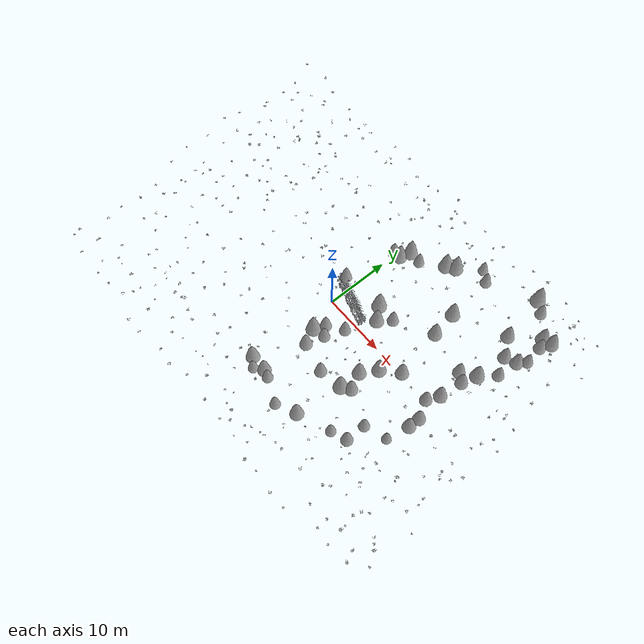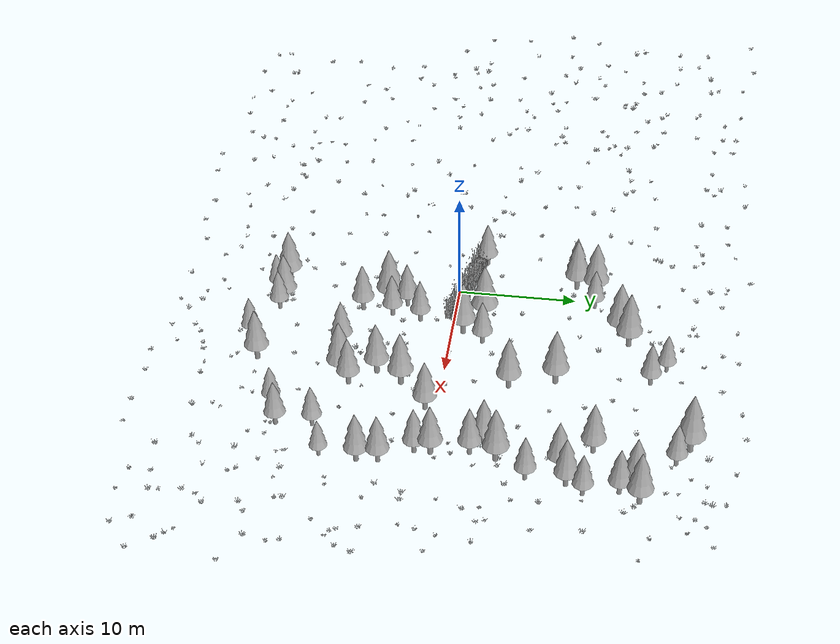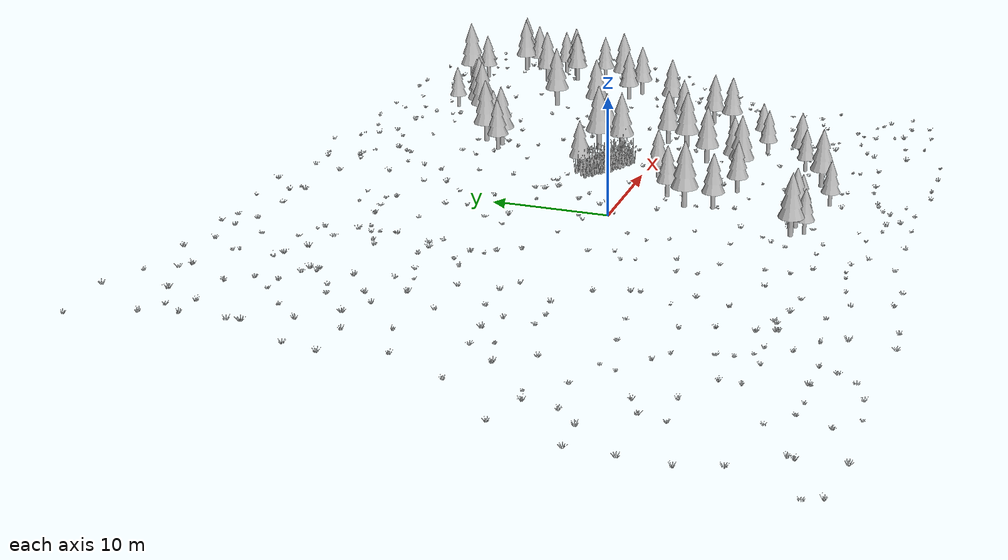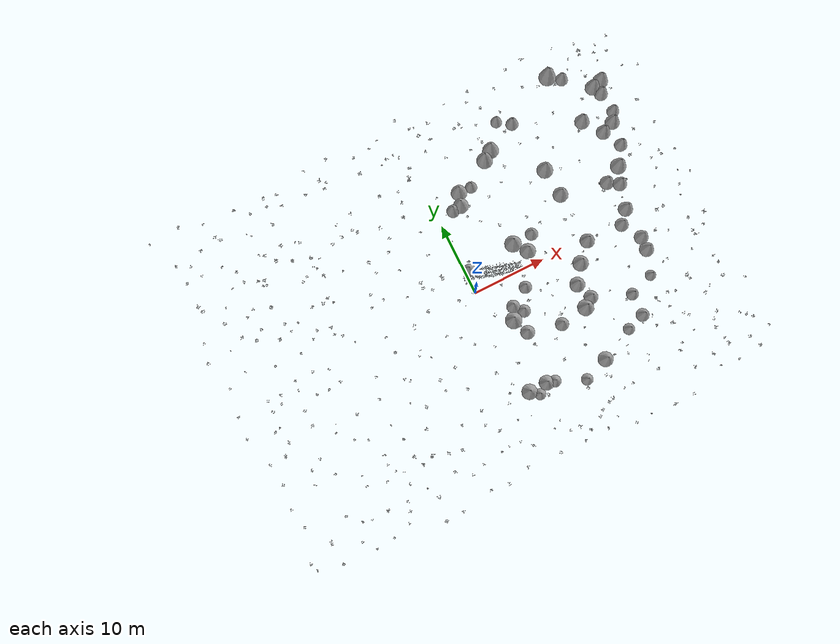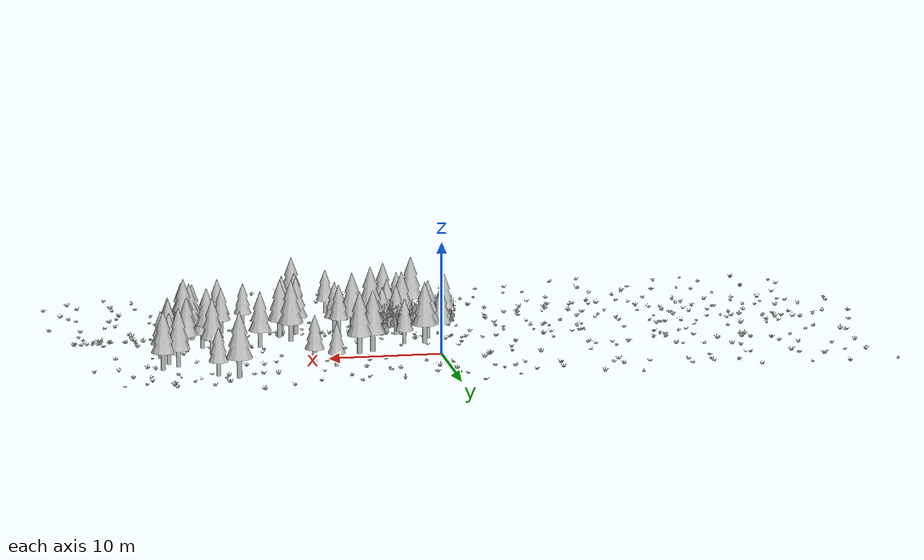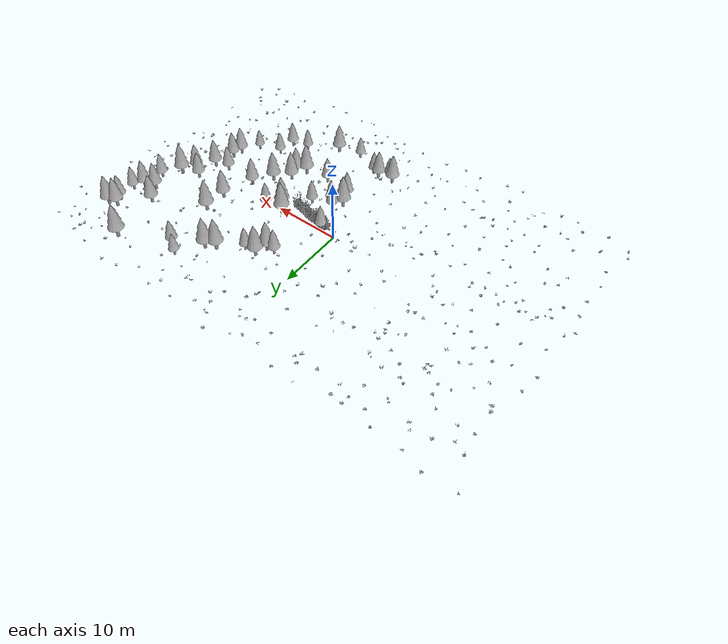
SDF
<sdf version="1.9">
 <world name="nomad_forest">
  <model name="forest_grass">
   <static>true</static>
   <link name="link">
    <visual name="visual_only"><geometry><mesh><uri>../assets/geometry/grass.obj</uri></mesh></geometry></visual>
   </link>
  </model>
  <model name="path_grass">
   <static>true</static>
   <link name="link">
    <visual name="visual_only">
     <geometry><mesh><uri>../assets/geometry/path_grass.obj</uri></mesh></geometry>
    </visual>
   </link>
  </model>
  <model name="meadow_grass">
   <static>true</static>
   <link name="link">
    <visual name="visual_only">
     <geometry><mesh><uri>../assets/geometry/meadow_grass.obj</uri></mesh></geometry>
    </visual>
   </link>
  </model>
  <model name="tree_0079">
   <static>true</static>
   <pose>1.4040343907407518 -15.725831270517384 -0.10772524546870592 0 0 -2.392526844625827</pose>
   <link name="link">
    <visual name="pine">
     <geometry>
      <mesh>
       <uri>../assets/models/pine_tree.obj</uri>
       <scale>0.8603425744427444 0.8603425744427444 0.8603425744427444</scale>
      </mesh>
     </geometry>
    </visual>
    <collision name="trunk">
     <pose>0 0 1.441073812191597 0 0 0</pose>
     <geometry><box><size>0.44 0.44 2.882147624383194</size></box></geometry>
    </collision>
   </link>
  </model>
  <model name="tree_0085">
   <static>true</static>
   <pose>4.414682843560055 -5.172826575479321 0.661206575353829 0 0 2.240257303027585</pose>
   <link name="link">
    <visual name="pine">
     <geometry>
      <mesh>
       <uri>../assets/models/pine_tree.obj</uri>
       <scale>0.9675177079361967 0.9675177079361967 0.9675177079361967</scale>
      </mesh>
     </geometry>
    </visual>
    <collision name="trunk">
     <pose>0 0 1.6205921607931295 0 0 0</pose>
     <geometry><box><size>0.44 0.44 3.241184321586259</size></box></geometry>
    </collision>
   </link>
  </model>
  <model name="tree_0090">
   <static>true</static>
   <pose>8.09205933031451 -8.909802457598419 0.16759876982480915 0 0 0.543151040963163</pose>
   <link name="link">
    <visual name="pine">
     <geometry>
      <mesh>
       <uri>../assets/models/pine_tree.obj</uri>
       <scale>1.0219804891328 1.0219804891328 1.0219804891328</scale>
      </mesh>
     </geometry>
    </visual>
    <collision name="trunk">
     <pose>0 0 1.71181731929744 0 0 0</pose>
     <geometry><box><size>0.44 0.44 3.42363463859488</size></box></geometry>
    </collision>
   </link>
  </model>
  <model name="tree_0093">
   <static>true</static>
   <pose>8.166608384932596 1.3395274352616688 2.674960287683081 0 0 -1.0150078506163611</pose>
   <link name="link">
    <visual name="pine">
     <geometry>
      <mesh>
       <uri>../assets/models/pine_tree.obj</uri>
       <scale>1.180015492979234 1.180015492979234 1.180015492979234</scale>
      </mesh>
     </geometry>
    </visual>
    <collision name="trunk">
     <pose>0 0 1.9765259507402169 0 0 0</pose>
     <geometry><box><size>0.44 0.44 3.9530519014804337</size></box></geometry>
    </collision>
   </link>
  </model>
  <model name="tree_0097">
   <static>true</static>
   <pose>12.103327871964035 -5.279304053281655 1.0596436875109276 0 0 2.910441953926141</pose>
   <link name="link">
    <visual name="pine">
     <geometry>
      <mesh>
       <uri>../assets/models/pine_tree.obj</uri>
       <scale>1.1519023268321797 1.1519023268321797 1.1519023268321797</scale>
      </mesh>
     </geometry>
    </visual>
    <collision name="trunk">
     <pose>0 0 1.929436397443901 0 0 0</pose>
     <geometry><box><size>0.44 0.44 3.858872794887802</size></box></geometry>
    </collision>
   </link>
  </model>
  <model name="tree_0101">
   <static>true</static>
   <pose>12.17791697907382 18.211576002194043 3.970718524714318 0 0 1.8452593733793228</pose>
   <link name="link">
    <visual name="pine">
     <geometry>
      <mesh>
       <uri>../assets/models/pine_tree.obj</uri>
       <scale>0.8381686725403245 0.8381686725403245 0.8381686725403245</scale>
      </mesh>
     </geometry>
    </visual>
    <collision name="trunk">
     <pose>0 0 1.4039325265050435 0 0 0</pose>
     <geometry><box><size>0.44 0.44 2.807865053010087</size></box></geometry>
    </collision>
   </link>
  </model>
  <model name="tree_0108">
   <static>true</static>
   <pose>18.067166668847747 -12.598020962311223 0.052352232862963775 0 0 -3.0305764284153707</pose>
   <link name="link">
    <visual name="pine">
     <geometry>
      <mesh>
       <uri>../assets/models/pine_tree.obj</uri>
       <scale>1.0039759624250735 1.0039759624250735 1.0039759624250735</scale>
      </mesh>
     </geometry>
    </visual>
    <collision name="trunk">
     <pose>0 0 1.6816597370619981 0 0 0</pose>
     <geometry><box><size>0.44 0.44 3.3633194741239962</size></box></geometry>
    </collision>
   </link>
  </model>
  <model name="tree_0113">
   <static>true</static>
   <pose>21.43584275141814 -8.440225477670785 0.40124177072812606 0 0 -2.4944077020631195</pose>
   <link name="link">
    <visual name="pine">
     <geometry>
      <mesh>
       <uri>../assets/models/pine_tree.obj</uri>
       <scale>0.8184855919871812 0.8184855919871812 0.8184855919871812</scale>
      </mesh>
     </geometry>
    </visual>
    <collision name="trunk">
     <pose>0 0 1.3709633665785286 0 0 0</pose>
     <geometry><box><size>0.44 0.44 2.741926733157057</size></box></geometry>
    </collision>
   </link>
  </model>
  <model name="tree_0123">
   <static>true</static>
   <pose>25.254457430298633 8.203424454333309 3.788328063644859 0 0 3.0451428287578173</pose>
   <link name="link">
    <visual name="pine">
     <geometry>
      <mesh>
       <uri>../assets/models/pine_tree.obj</uri>
       <scale>0.9626912353876398 0.9626912353876398 0.9626912353876398</scale>
      </mesh>
     </geometry>
    </visual>
    <collision name="trunk">
     <pose>0 0 1.6125078192742968 0 0 0</pose>
     <geometry><box><size>0.44 0.44 3.2250156385485935</size></box></geometry>
    </collision>
   </link>
  </model>
  <model name="tree_0124">
   <static>true</static>
   <pose>25.61315934582009 11.318399117828445 3.87919084352 0 0 1.8800140066571884</pose>
   <link name="link">
    <visual name="pine">
     <geometry>
      <mesh>
       <uri>../assets/models/pine_tree.obj</uri>
       <scale>1.0703302634881893 1.0703302634881893 1.0703302634881893</scale>
      </mesh>
     </geometry>
    </visual>
    <collision name="trunk">
     <pose>0 0 1.7928031913427172 0 0 0</pose>
     <geometry><box><size>0.44 0.44 3.5856063826854343</size></box></geometry>
    </collision>
   </link>
  </model>
  <model name="tree_0145">
   <static>true</static>
   <pose>1.844830629709577 10.1728805533047 4.08147227359687 0 0 0.7859794770549072</pose>
   <link name="link">
    <visual name="pine">
     <geometry>
      <mesh>
       <uri>../assets/models/pine_tree.obj</uri>
       <scale>0.9685998039980167 0.9685998039980167 0.9685998039980167</scale>
      </mesh>
     </geometry>
    </visual>
    <collision name="trunk">
     <pose>0 0 1.622404671696678 0 0 0</pose>
     <geometry><box><size>0.44 0.44 3.244809343393356</size></box></geometry>
    </collision>
   </link>
  </model>
  <model name="tree_0147">
   <static>true</static>
   <pose>7.70764392117114 -16.780587005585012 0.03342473015368693 0 0 -2.4795058111798234</pose>
   <link name="link">
    <visual name="pine">
     <geometry>
      <mesh>
       <uri>../assets/models/pine_tree.obj</uri>
       <scale>0.885928341494171 0.885928341494171 0.885928341494171</scale>
      </mesh>
     </geometry>
    </visual>
    <collision name="trunk">
     <pose>0 0 1.4839299720027364 0 0 0</pose>
     <geometry><box><size>0.44 0.44 2.9678599440054727</size></box></geometry>
    </collision>
   </link>
  </model>
  <model name="tree_0152">
   <static>true</static>
   <pose>18.13207483502385 -9.57056188500926 0.32670338482310907 0 0 2.345931137766924</pose>
   <link name="link">
    <visual name="pine">
     <geometry>
      <mesh>
       <uri>../assets/models/pine_tree.obj</uri>
       <scale>0.9186525355624718 0.9186525355624718 0.9186525355624718</scale>
      </mesh>
     </geometry>
    </visual>
    <collision name="trunk">
     <pose>0 0 1.5387429970671405 0 0 0</pose>
     <geometry><box><size>0.44 0.44 3.077485994134281</size></box></geometry>
    </collision>
   </link>
  </model>
  <model name="tree_0153">
   <static>true</static>
   <pose>2.785083350919912 -14.783711985202673 -0.20294977764239625 0 0 -0.6714789105508467</pose>
   <link name="link">
    <visual name="pine">
     <geometry>
      <mesh>
       <uri>../assets/models/pine_tree.obj</uri>
       <scale>1.1348528074091004 1.1348528074091004 1.1348528074091004</scale>
      </mesh>
     </geometry>
    </visual>
    <collision name="trunk">
     <pose>0 0 1.9008784524102433 0 0 0</pose>
     <geometry><box><size>0.44 0.44 3.8017569048204867</size></box></geometry>
    </collision>
   </link>
  </model>
  <model name="tree_0176">
   <static>true</static>
   <pose>15.652497003100407 -13.418253456045443 -0.05930626893724187 0 0 -1.4276371842760884</pose>
   <link name="link">
    <visual name="pine">
     <geometry>
      <mesh>
       <uri>../assets/models/pine_tree.obj</uri>
       <scale>0.8751090141221561 0.8751090141221561 0.8751090141221561</scale>
      </mesh>
     </geometry>
    </visual>
    <collision name="trunk">
     <pose>0 0 1.4658075986546115 0 0 0</pose>
     <geometry><box><size>0.44 0.44 2.931615197309223</size></box></geometry>
    </collision>
   </link>
  </model>
  <model name="tree_0190">
   <static>true</static>
   <pose>8.440680881386108 14.199549724739121 4.120688515635102 0 0 -2.826538755678515</pose>
   <link name="link">
    <visual name="pine">
     <geometry>
      <mesh>
       <uri>../assets/models/pine_tree.obj</uri>
       <scale>1.201619926565681 1.201619926565681 1.201619926565681</scale>
      </mesh>
     </geometry>
    </visual>
    <collision name="trunk">
     <pose>0 0 2.0127133769975156 0 0 0</pose>
     <geometry><box><size>0.44 0.44 4.025426753995031</size></box></geometry>
    </collision>
   </link>
  </model>
  <model name="tree_0191">
   <static>true</static>
   <pose>3.8818119574392824 -15.08116833013731 -0.1290276752715569 0 0 -2.3627623723663453</pose>
   <link name="link">
    <visual name="pine">
     <geometry>
      <mesh>
       <uri>../assets/models/pine_tree.obj</uri>
       <scale>0.917618205168787 0.917618205168787 0.917618205168787</scale>
      </mesh>
     </geometry>
    </visual>
    <collision name="trunk">
     <pose>0 0 1.5370104936577182 0 0 0</pose>
     <geometry><box><size>0.44 0.44 3.0740209873154365</size></box></geometry>
    </collision>
   </link>
  </model>
  <model name="tree_0192">
   <static>true</static>
   <pose>22.435816932964407 -3.536446098520699 1.346411810773645 0 0 2.1371616142582996</pose>
   <link name="link">
    <visual name="pine">
     <geometry>
      <mesh>
       <uri>../assets/models/pine_tree.obj</uri>
       <scale>1.0605517183830016 1.0605517183830016 1.0605517183830016</scale>
      </mesh>
     </geometry>
    </visual>
    <collision name="trunk">
     <pose>0 0 1.7764241282915276 0 0 0</pose>
     <geometry><box><size>0.44 0.44 3.5528482565830553</size></box></geometry>
    </collision>
   </link>
  </model>
  <model name="tree_0199">
   <static>true</static>
   <pose>23.569982557056683 5.795406408614738 3.7865020065337056 0 0 -1.623077768715212</pose>
   <link name="link">
    <visual name="pine">
     <geometry>
      <mesh>
       <uri>../assets/models/pine_tree.obj</uri>
       <scale>1.1845048146195674 1.1845048146195674 1.1845048146195674</scale>
      </mesh>
     </geometry>
    </visual>
    <collision name="trunk">
     <pose>0 0 1.9840455644877755 0 0 0</pose>
     <geometry><box><size>0.44 0.44 3.968091128975551</size></box></geometry>
    </collision>
   </link>
  </model>
  <model name="tree_0202">
   <static>true</static>
   <pose>6.818876670600538 2.955340465860676 3.228104762477189 0 0 1.0715975330827785</pose>
   <link name="link">
    <visual name="pine">
     <geometry>
      <mesh>
       <uri>../assets/models/pine_tree.obj</uri>
       <scale>1.2477985433231338 1.2477985433231338 1.2477985433231338</scale>
      </mesh>
     </geometry>
    </visual>
    <collision name="trunk">
     <pose>0 0 2.090062560066249 0 0 0</pose>
     <geometry><box><size>0.44 0.44 4.180125120132498</size></box></geometry>
    </collision>
   </link>
  </model>
  <model name="tree_0207">
   <static>true</static>
   <pose>3.5635179544175912 11.891871235077623 4.111352698797291 0 0 -2.9128157570038646</pose>
   <link name="link">
    <visual name="pine">
     <geometry>
      <mesh>
       <uri>../assets/models/pine_tree.obj</uri>
       <scale>1.185919274044591 1.185919274044591 1.185919274044591</scale>
      </mesh>
     </geometry>
    </visual>
    <collision name="trunk">
     <pose>0 0 1.98641478402469 0 0 0</pose>
     <geometry><box><size>0.44 0.44 3.97282956804938</size></box></geometry>
    </collision>
   </link>
  </model>
  <model name="tree_0211">
   <static>true</static>
   <pose>0.23170583911337417 2.4392160301378816 3.5410392620812234 0 0 2.7915316872537828</pose>
   <link name="link">
    <visual name="pine">
     <geometry>
      <mesh>
       <uri>../assets/models/pine_tree.obj</uri>
       <scale>0.9595932818431513 0.9595932818431513 0.9595932818431513</scale>
      </mesh>
     </geometry>
    </visual>
    <collision name="trunk">
     <pose>0 0 1.6073187470872785 0 0 0</pose>
     <geometry><box><size>0.44 0.44 3.214637494174557</size></box></geometry>
    </collision>
   </link>
  </model>
  <model name="tree_0216">
   <static>true</static>
   <pose>13.029466758064487 -7.4994979961646635 0.40771615344331275 0 0 -0.6609565583672433</pose>
   <link name="link">
    <visual name="pine">
     <geometry>
      <mesh>
       <uri>../assets/models/pine_tree.obj</uri>
       <scale>1.0804515140659818 1.0804515140659818 1.0804515140659818</scale>
      </mesh>
     </geometry>
    </visual>
    <collision name="trunk">
     <pose>0 0 1.8097562860605196 0 0 0</pose>
     <geometry><box><size>0.44 0.44 3.6195125721210393</size></box></geometry>
    </collision>
   </link>
  </model>
  <model name="tree_0218">
   <static>true</static>
   <pose>22.10161639404886 0.5635710988927869 2.3896555517212064 0 0 0.5925242542972715</pose>
   <link name="link">
    <visual name="pine">
     <geometry>
      <mesh>
       <uri>../assets/models/pine_tree.obj</uri>
       <scale>1.1020363064766003 1.1020363064766003 1.1020363064766003</scale>
      </mesh>
     </geometry>
    </visual>
    <collision name="trunk">
     <pose>0 0 1.8459108133483055 0 0 0</pose>
     <geometry><box><size>0.44 0.44 3.691821626696611</size></box></geometry>
    </collision>
   </link>
  </model>
  <model name="tree_0219">
   <static>true</static>
   <pose>5.891831122757075 -2.566269529153974 1.5829735861229342 0 0 2.428343281246423</pose>
   <link name="link">
    <visual name="pine">
     <geometry>
      <mesh>
       <uri>../assets/models/pine_tree.obj</uri>
       <scale>0.9507468448184051 0.9507468448184051 0.9507468448184051</scale>
      </mesh>
     </geometry>
    </visual>
    <collision name="trunk">
     <pose>0 0 1.5925009650708286 0 0 0</pose>
     <geometry><box><size>0.44 0.44 3.1850019301416572</size></box></geometry>
    </collision>
   </link>
  </model>
  <model name="tree_0220">
   <static>true</static>
   <pose>5.319717613181496 11.940313679931393 4.109128874845556 0 0 1.4278087269920006</pose>
   <link name="link">
    <visual name="pine">
     <geometry>
      <mesh>
       <uri>../assets/models/pine_tree.obj</uri>
       <scale>0.8781726028357063 0.8781726028357063 0.8781726028357063</scale>
      </mesh>
     </geometry>
    </visual>
    <collision name="trunk">
     <pose>0 0 1.4709391097498081 0 0 0</pose>
     <geometry><box><size>0.44 0.44 2.9418782194996163</size></box></geometry>
    </collision>
   </link>
  </model>
  <model name="tree_0223">
   <static>true</static>
   <pose>3.5714122232063303 -7.847086014846624 0.27237902802592584 0 0 1.6739985761373477</pose>
   <link name="link">
    <visual name="pine">
     <geometry>
      <mesh>
       <uri>../assets/models/pine_tree.obj</uri>
       <scale>1.0687225007619128 1.0687225007619128 1.0687225007619128</scale>
      </mesh>
     </geometry>
    </visual>
    <collision name="trunk">
     <pose>0 0 1.7901101887762039 0 0 0</pose>
     <geometry><box><size>0.44 0.44 3.5802203775524077</size></box></geometry>
    </collision>
   </link>
  </model>
  <model name="tree_0230">
   <static>true</static>
   <pose>21.39960197455943 4.632279396975946 3.287060660100178 0 0 -2.0843220529009114</pose>
   <link name="link">
    <visual name="pine">
     <geometry>
      <mesh>
       <uri>../assets/models/pine_tree.obj</uri>
       <scale>1.0340336623659456 1.0340336623659456 1.0340336623659456</scale>
      </mesh>
     </geometry>
    </visual>
    <collision name="trunk">
     <pose>0 0 1.732006384462959 0 0 0</pose>
     <geometry><box><size>0.44 0.44 3.464012768925918</size></box></geometry>
    </collision>
   </link>
  </model>
  <model name="tree_0231">
   <static>true</static>
   <pose>3.3841151539106704 -4.038452106920012 0.953098999636383 0 0 1.4754345514062956</pose>
   <link name="link">
    <visual name="pine">
     <geometry>
      <mesh>
       <uri>../assets/models/pine_tree.obj</uri>
       <scale>0.9932701134580739 0.9932701134580739 0.9932701134580739</scale>
      </mesh>
     </geometry>
    </visual>
    <collision name="trunk">
     <pose>0 0 1.663727440042274 0 0 0</pose>
     <geometry><box><size>0.44 0.44 3.327454880084548</size></box></geometry>
    </collision>
   </link>
  </model>
  <model name="tree_0233">
   <static>true</static>
   <pose>14.780305708815014 9.543903860115101 4.154753917612376 0 0 -1.4580217669477222</pose>
   <link name="link">
    <visual name="pine">
     <geometry>
      <mesh>
       <uri>../assets/models/pine_tree.obj</uri>
       <scale>1.1969696393819989 1.1969696393819989 1.1969696393819989</scale>
      </mesh>
     </geometry>
    </visual>
    <collision name="trunk">
     <pose>0 0 2.004924145964848 0 0 0</pose>
     <geometry><box><size>0.44 0.44 4.009848291929696</size></box></geometry>
    </collision>
   </link>
  </model>
  <model name="tree_0235">
   <static>true</static>
   <pose>3.0101047278970157 10.27434312915831 4.083628248175319 0 0 -1.0240197977516978</pose>
   <link name="link">
    <visual name="pine">
     <geometry>
      <mesh>
       <uri>../assets/models/pine_tree.obj</uri>
       <scale>1.1353460595144083 1.1353460595144083 1.1353460595144083</scale>
      </mesh>
     </geometry>
    </visual>
    <collision name="trunk">
     <pose>0 0 1.9017046496866339 0 0 0</pose>
     <geometry><box><size>0.44 0.44 3.8034092993732678</size></box></geometry>
    </collision>
   </link>
  </model>
  <model name="tree_0242">
   <static>true</static>
   <pose>20.802842096223173 20.43855171849893 3.902659529358883 0 0 0.08687755394423444</pose>
   <link name="link">
    <visual name="pine">
     <geometry>
      <mesh>
       <uri>../assets/models/pine_tree.obj</uri>
       <scale>1.2754019106847523 1.2754019106847523 1.2754019106847523</scale>
      </mesh>
     </geometry>
    </visual>
    <collision name="trunk">
     <pose>0 0 2.13629820039696 0 0 0</pose>
     <geometry><box><size>0.44 0.44 4.27259640079392</size></box></geometry>
    </collision>
   </link>
  </model>
  <model name="tree_0247">
   <static>true</static>
   <pose>0.2525014534112273 -14.832146084386185 0.06953143166794434 0 0 -2.6069408954723325</pose>
   <link name="link">
    <visual name="pine">
     <geometry>
      <mesh>
       <uri>../assets/models/pine_tree.obj</uri>
       <scale>1.174752536826116 1.174752536826116 1.174752536826116</scale>
      </mesh>
     </geometry>
    </visual>
    <collision name="trunk">
     <pose>0 0 1.9677104991837444 0 0 0</pose>
     <geometry><box><size>0.44 0.44 3.935420998367489</size></box></geometry>
    </collision>
   </link>
  </model>
  <model name="tree_0248">
   <static>true</static>
   <pose>26.067117828825097 15.357716949064333 4.028278780778664 0 0 -0.9195605044671925</pose>
   <link name="link">
    <visual name="pine">
     <geometry>
      <mesh>
       <uri>../assets/models/pine_tree.obj</uri>
       <scale>0.9984800122995259 0.9984800122995259 0.9984800122995259</scale>
      </mesh>
     </geometry>
    </visual>
    <collision name="trunk">
     <pose>0 0 1.6724540206017058 0 0 0</pose>
     <geometry><box><size>0.44 0.44 3.3449080412034116</size></box></geometry>
    </collision>
   </link>
  </model>
  <model name="tree_0249">
   <static>true</static>
   <pose>26.434689671457306 12.63227326625347 3.880101167758681 0 0 2.9395098139307043</pose>
   <link name="link">
    <visual name="pine">
     <geometry>
      <mesh>
       <uri>../assets/models/pine_tree.obj</uri>
       <scale>0.9201905774272329 0.9201905774272329 0.9201905774272329</scale>
      </mesh>
     </geometry>
    </visual>
    <collision name="trunk">
     <pose>0 0 1.5413192171906152 0 0 0</pose>
     <geometry><box><size>0.44 0.44 3.0826384343812303</size></box></geometry>
    </collision>
   </link>
  </model>
  <model name="tree_0251">
   <static>true</static>
   <pose>13.699619075341737 -3.042225267053965 1.559821026472925 0 0 -1.2268518511477637</pose>
   <link name="link">
    <visual name="pine">
     <geometry>
      <mesh>
       <uri>../assets/models/pine_tree.obj</uri>
       <scale>1.1880056277578614 1.1880056277578614 1.1880056277578614</scale>
      </mesh>
     </geometry>
    </visual>
    <collision name="trunk">
     <pose>0 0 1.989909426494418 0 0 0</pose>
     <geometry><box><size>0.44 0.44 3.979818852988836</size></box></geometry>
    </collision>
   </link>
  </model>
  <model name="tree_0256">
   <static>true</static>
   <pose>9.701850870525348 15.020454847589363 4.184617529467241 0 0 0.7316649136190095</pose>
   <link name="link">
    <visual name="pine">
     <geometry>
      <mesh>
       <uri>../assets/models/pine_tree.obj</uri>
       <scale>1.2046766469225316 1.2046766469225316 1.2046766469225316</scale>
      </mesh>
     </geometry>
    </visual>
    <collision name="trunk">
     <pose>0 0 2.0178333835952404 0 0 0</pose>
     <geometry><box><size>0.44 0.44 4.035666767190481</size></box></geometry>
    </collision>
   </link>
  </model>
  <model name="tree_0284">
   <static>true</static>
   <pose>11.793799275893171 -8.406197066076885 0.2459625767397464 0 0 -0.6965182571923398</pose>
   <link name="link">
    <visual name="pine">
     <geometry>
      <mesh>
       <uri>../assets/models/pine_tree.obj</uri>
       <scale>1.2410247262921887 1.2410247262921887 1.2410247262921887</scale>
      </mesh>
     </geometry>
    </visual>
    <collision name="trunk">
     <pose>0 0 2.0787164165394163 0 0 0</pose>
     <geometry><box><size>0.44 0.44 4.157432833078833</size></box></geometry>
    </collision>
   </link>
  </model>
  <model name="tree_0286">
   <static>true</static>
   <pose>22.340683598575694 -5.261456083873803 1.1045369758576924 0 0 0.014767595946817062</pose>
   <link name="link">
    <visual name="pine">
     <geometry>
      <mesh>
       <uri>../assets/models/pine_tree.obj</uri>
       <scale>1.0940198513512764 1.0940198513512764 1.0940198513512764</scale>
      </mesh>
     </geometry>
    </visual>
    <collision name="trunk">
     <pose>0 0 1.8324832510133882 0 0 0</pose>
     <geometry><box><size>0.44 0.44 3.6649665020267763</size></box></geometry>
    </collision>
   </link>
  </model>
  <model name="tree_0289">
   <static>true</static>
   <pose>15.200653366396828 5.867164482314443 3.621863694974633 0 0 -0.3840131408802688</pose>
   <link name="link">
    <visual name="pine">
     <geometry>
      <mesh>
       <uri>../assets/models/pine_tree.obj</uri>
       <scale>1.1319413882679321 1.1319413882679321 1.1319413882679321</scale>
      </mesh>
     </geometry>
    </visual>
    <collision name="trunk">
     <pose>0 0 1.8960018253487863 0 0 0</pose>
     <geometry><box><size>0.44 0.44 3.7920036506975725</size></box></geometry>
    </collision>
   </link>
  </model>
  <model name="tree_0296">
   <static>true</static>
   <pose>26.775343380212846 16.920376705811492 3.9469253623996714 0 0 2.688324872420858</pose>
   <link name="link">
    <visual name="pine">
     <geometry>
      <mesh>
       <uri>../assets/models/pine_tree.obj</uri>
       <scale>1.139442196481225 1.139442196481225 1.139442196481225</scale>
      </mesh>
     </geometry>
    </visual>
    <collision name="trunk">
     <pose>0 0 1.9085656791060517 0 0 0</pose>
     <geometry><box><size>0.44 0.44 3.8171313582121034</size></box></geometry>
    </collision>
   </link>
  </model>
  <model name="tree_0304">
   <static>true</static>
   <pose>23.94557073918488 10.664260173132433 3.906840782771185 0 0 -1.2625688498638763</pose>
   <link name="link">
    <visual name="pine">
     <geometry>
      <mesh>
       <uri>../assets/models/pine_tree.obj</uri>
       <scale>1.056321700881818 1.056321700881818 1.056321700881818</scale>
      </mesh>
     </geometry>
    </visual>
    <collision name="trunk">
     <pose>0 0 1.7693388489770452 0 0 0</pose>
     <geometry><box><size>0.44 0.44 3.5386776979540904</size></box></geometry>
    </collision>
   </link>
  </model>
  <model name="tree_0305">
   <static>true</static>
   <pose>22.425958394965313 19.450081112813244 3.8783595953583982 0 0 -2.1863888529497575</pose>
   <link name="link">
    <visual name="pine">
     <geometry>
      <mesh>
       <uri>../assets/models/pine_tree.obj</uri>
       <scale>0.93226120382198 0.93226120382198 0.93226120382198</scale>
      </mesh>
     </geometry>
    </visual>
    <collision name="trunk">
     <pose>0 0 1.5615375164018166 0 0 0</pose>
     <geometry><box><size>0.44 0.44 3.123075032803633</size></box></geometry>
    </collision>
   </link>
  </model>
  <model name="tree_0309">
   <static>true</static>
   <pose>2.6164696520319524 -5.6826839127366355 0.539015209535505 0 0 0.28824727686623214</pose>
   <link name="link">
    <visual name="pine">
     <geometry>
      <mesh>
       <uri>../assets/models/pine_tree.obj</uri>
       <scale>1.2628211975265304 1.2628211975265304 1.2628211975265304</scale>
      </mesh>
     </geometry>
    </visual>
    <collision name="trunk">
     <pose>0 0 2.1152255058569387 0 0 0</pose>
     <geometry><box><size>0.44 0.44 4.230451011713877</size></box></geometry>
    </collision>
   </link>
  </model>
  <model name="tree_0313">
   <static>true</static>
   <pose>25.42750800510391 16.53178435845666 4.0801435097360965 0 0 0.2247530075382838</pose>
   <link name="link">
    <visual name="pine">
     <geometry>
      <mesh>
       <uri>../assets/models/pine_tree.obj</uri>
       <scale>1.1310895857106757 1.1310895857106757 1.1310895857106757</scale>
      </mesh>
     </geometry>
    </visual>
    <collision name="trunk">
     <pose>0 0 1.894575056065382 0 0 0</pose>
     <geometry><box><size>0.44 0.44 3.789150112130764</size></box></geometry>
    </collision>
   </link>
  </model>
  <model name="tree_0317">
   <static>true</static>
   <pose>22.073097158541835 13.100479690099064 4.120367947804636 0 0 0.46570254270637584</pose>
   <link name="link">
    <visual name="pine">
     <geometry>
      <mesh>
       <uri>../assets/models/pine_tree.obj</uri>
       <scale>1.0987652974534232 1.0987652974534232 1.0987652974534232</scale>
      </mesh>
     </geometry>
    </visual>
    <collision name="trunk">
     <pose>0 0 1.840431873234484 0 0 0</pose>
     <geometry><box><size>0.44 0.44 3.680863746468968</size></box></geometry>
    </collision>
   </link>
  </model>
  <model name="tree_0326">
   <static>true</static>
   <pose>10.958725189237597 -15.54086098794017 0.4017986430366064 0 0 -0.5865212261878856</pose>
   <link name="link">
    <visual name="pine">
     <geometry>
      <mesh>
       <uri>../assets/models/pine_tree.obj</uri>
       <scale>1.1512099564214517 1.1512099564214517 1.1512099564214517</scale>
      </mesh>
     </geometry>
    </visual>
    <collision name="trunk">
     <pose>0 0 1.9282766770059316 0 0 0</pose>
     <geometry><box><size>0.44 0.44 3.8565533540118633</size></box></geometry>
    </collision>
   </link>
  </model>
  <model name="tree_0328">
   <static>true</static>
   <pose>22.777034514449213 3.7051281816958905 3.4563301820601 0 0 -2.169248932721361</pose>
   <link name="link">
    <visual name="pine">
     <geometry>
      <mesh>
       <uri>../assets/models/pine_tree.obj</uri>
       <scale>1.0429155138749873 1.0429155138749873 1.0429155138749873</scale>
      </mesh>
     </geometry>
    </visual>
    <collision name="trunk">
     <pose>0 0 1.7468834857406037 0 0 0</pose>
     <geometry><box><size>0.44 0.44 3.4937669714812074</size></box></geometry>
    </collision>
   </link>
  </model>
  <model name="tree_0340">
   <static>true</static>
   <pose>13.873730110019864 17.016379991001145 4.001968737062576 0 0 1.7636171382160835</pose>
   <link name="link">
    <visual name="pine">
     <geometry>
      <mesh>
       <uri>../assets/models/pine_tree.obj</uri>
       <scale>0.936181962499046 0.936181962499046 0.936181962499046</scale>
      </mesh>
     </geometry>
    </visual>
    <collision name="trunk">
     <pose>0 0 1.568104787185902 0 0 0</pose>
     <geometry><box><size>0.44 0.44 3.136209574371804</size></box></geometry>
    </collision>
   </link>
  </model>
  <model name="tree_0343">
   <static>true</static>
   <pose>20.969345587338566 -0.9013935639983117 1.2232995107710196 0 0 -0.9781201358210575</pose>
   <link name="link">
    <visual name="pine">
     <geometry>
      <mesh>
       <uri>../assets/models/pine_tree.obj</uri>
       <scale>1.016487188122402 1.016487188122402 1.016487188122402</scale>
      </mesh>
     </geometry>
    </visual>
    <collision name="trunk">
     <pose>0 0 1.7026160401050234 0 0 0</pose>
     <geometry><box><size>0.44 0.44 3.405232080210047</size></box></geometry>
    </collision>
   </link>
  </model>
  <model name="tree_0346">
   <static>true</static>
   <pose>15.948585298555798 -0.751148756319413 1.1411354928920625 0 0 1.825296000914418</pose>
   <link name="link">
    <visual name="pine">
     <geometry>
      <mesh>
       <uri>../assets/models/pine_tree.obj</uri>
       <scale>1.1104232589906897 1.1104232589906897 1.1104232589906897</scale>
      </mesh>
     </geometry>
    </visual>
    <collision name="trunk">
     <pose>0 0 1.8599589588094054 0 0 0</pose>
     <geometry><box><size>0.44 0.44 3.719917917618811</size></box></geometry>
    </collision>
   </link>
  </model>
  <model name="tree_0355">
   <static>true</static>
   <pose>9.610036396448187 3.0989989207284765 3.072343549865418 0 0 2.773394299134152</pose>
   <link name="link">
    <visual name="pine">
     <geometry>
      <mesh>
       <uri>../assets/models/pine_tree.obj</uri>
       <scale>0.9576030574836194 0.9576030574836194 0.9576030574836194</scale>
      </mesh>
     </geometry>
    </visual>
    <collision name="trunk">
     <pose>0 0 1.6039851212850624 0 0 0</pose>
     <geometry><box><size>0.44 0.44 3.207970242570125</size></box></geometry>
    </collision>
   </link>
  </model>
 </world>
</sdf>
